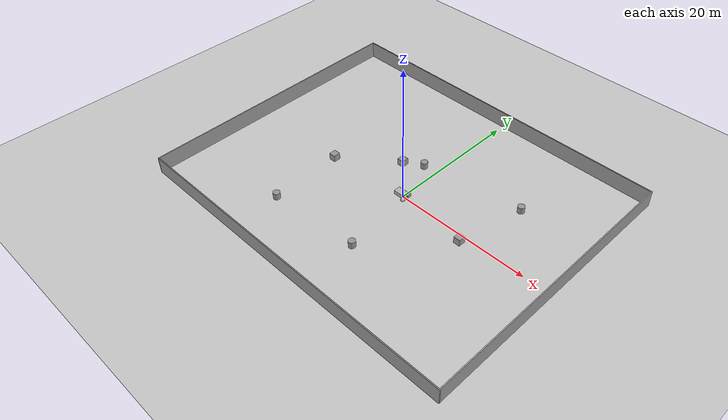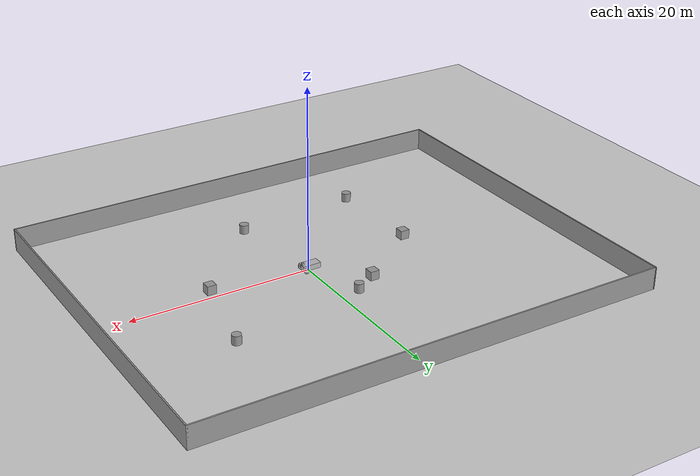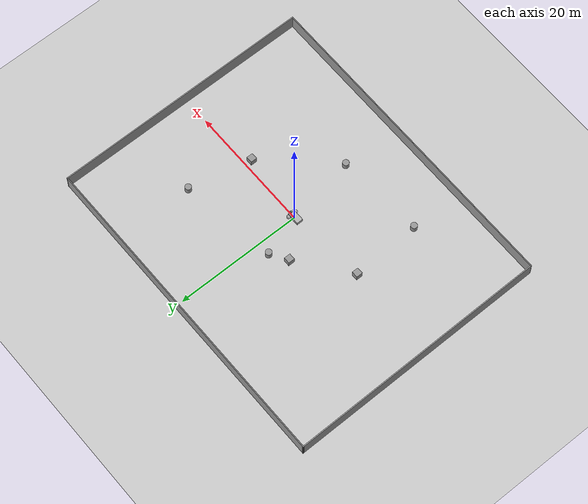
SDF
<sdf version="1.7">
 <world name="default">
  <model name="ground_plane">
   <static>1</static>
   <link name="link">
    <collision name="collision">
     <geometry><plane><normal>0 0 1</normal><size>100 100</size></plane></geometry>
     <surface>
      <contact><collide_bitmask>65535</collide_bitmask></contact>
      <friction><ode><mu>100</mu><mu2>50</mu2></ode></friction>
     </surface>
    </collision>
    <visual name="visual">
     <cast_shadows>0</cast_shadows>
     <geometry><plane><normal>0 0 1</normal><size>100 100</size></plane></geometry>
     <material>
      <script><uri>file://media/materials/scripts/gazebo.material</uri><name>Gazebo/Grey</name></script>
     </material>
    </visual>
   </link>
  </model>
  <light name="sun" type="directional">
   <pose>0 0 10 0 -0 0</pose>
   <diffuse>0.8 0.8 0.8 1</diffuse>
   <specular>0.2 0.2 0.2 1</specular>
   <attenuation>
    <range>1000</range>
    <constant>0.9</constant>
    <linear>0.01</linear>
    <quadratic>0.001</quadratic>
   </attenuation>
   <direction>-0.5 0.1 -0.9</direction>
   <spot><inner_angle>0</inner_angle><outer_angle>0</outer_angle><falloff>0</falloff></spot>
  </light>
  <model name="vehicle">
   <pose>5.4e-05 -2e-06 0.324993 1e-06 7e-06 4e-06</pose>
   <link name="chassis">
    <pose>-0.151427 -0 0.175 0 -0 0</pose>
    <inertial>
     <mass>1.14395</mass>
     <inertia>
      <ixx>0.126164</ixx>
      <ixy>0</ixy>
      <ixz>0</ixz>
      <iyy>0.416519</iyy>
      <iyz>0</iyz>
      <izz>0.481014</izz>
     </inertia>
    </inertial>
    <visual name="visual"><geometry><box><size>2.01142 1 0.568726</size></box></geometry></visual>
    <collision name="collision"><geometry><box><size>2.01142 1 0.568726</size></box></geometry></collision>
   </link>
   <link name="left_wheel">
    <pose>0.554283 0.625029 -0.025 -1.5707 0 0</pose>
    <inertial>
     <mass>2</mass>
     <inertia><ixx>0.145833</ixx><ixy>0</ixy><ixz>0</ixz><iyy>0.145833</iyy><iyz>0</iyz><izz>0.125</izz></inertia>
    </inertial>
    <visual name="visual"><geometry><sphere><radius>0.3</radius></sphere></geometry></visual>
    <collision name="collision">
     <geometry><sphere><radius>0.3</radius></sphere></geometry>
     <surface>
      <friction><ode><mu>1</mu><mu2>1</mu2><slip1>0</slip1><slip2>0</slip2></ode></friction>
      <contact>
       <ode>
        <soft_cfm>0</soft_cfm>
        <soft_erp>0.2</soft_erp>
        <kp>1e+13</kp>
        <kd>1</kd>
        <max_vel>0.01</max_vel>
        <min_depth>0.01</min_depth>
       </ode>
      </contact>
     </surface>
    </collision>
   </link>
   <link name="right_wheel">
    <pose>0.554282 -0.625029 -0.025 -1.5707 0 0</pose>
    <inertial>
     <mass>2</mass>
     <inertia><ixx>0.145833</ixx><ixy>0</ixy><ixz>0</ixz><iyy>0.145833</iyy><iyz>0</iyz><izz>0.125</izz></inertia>
    </inertial>
    <visual name="visual"><geometry><sphere><radius>0.3</radius></sphere></geometry></visual>
    <collision name="collision">
     <geometry><sphere><radius>0.3</radius></sphere></geometry>
     <surface>
      <friction><ode><mu>1</mu><mu2>1</mu2><slip1>0</slip1><slip2>0</slip2></ode></friction>
      <contact>
       <ode>
        <soft_cfm>0</soft_cfm>
        <soft_erp>0.2</soft_erp>
        <kp>1e+13</kp>
        <kd>1</kd>
        <max_vel>0.01</max_vel>
        <min_depth>0.01</min_depth>
       </ode>
      </contact>
     </surface>
    </collision>
   </link>
   <link name="caster">
    <pose>-0.957138 -0 -0.125 0 -0 0</pose>
    <inertial>
     <mass>1</mass>
     <inertia><ixx>0.1</ixx><ixy>0</ixy><ixz>0</ixz><iyy>0.1</iyy><iyz>0</iyz><izz>0.1</izz></inertia>
    </inertial>
    <visual name="visual"><geometry><sphere><radius>0.2</radius></sphere></geometry></visual>
    <collision name="collision"><geometry><sphere><radius>0.2</radius></sphere></geometry></collision>
   </link>
   <joint name="left_wheel_joint" type="revolute">
    <parent>chassis</parent>
    <child>left_wheel</child>
    <axis>
     <xyz>0 0 1</xyz>
     <limit><lower>-1.79769e+308</lower><upper>1.79769e+308</upper></limit>
     <dynamics><spring_reference>0</spring_reference><spring_stiffness>0</spring_stiffness></dynamics>
    </axis>
   </joint>
   <joint name="right_wheel_joint" type="revolute">
    <parent>chassis</parent>
    <child>right_wheel</child>
    <axis>
     <xyz>0 0 1</xyz>
     <limit><lower>-1.79769e+308</lower><upper>1.79769e+308</upper></limit>
     <dynamics><spring_reference>0</spring_reference><spring_stiffness>0</spring_stiffness></dynamics>
    </axis>
   </joint>
   <joint name="caster_wheel" type="ball"><parent>chassis</parent><child>caster</child></joint>
   <link name="camera_link">
    <pose>0.7 0 0.56 0 0 0</pose>
    <inertial>
     <mass>0.1</mass>
     <inertia>
      <ixx>0.0126164</ixx>
      <ixy>0</ixy>
      <ixz>0</ixz>
      <iyy>0.0416519</iyy>
      <iyz>0</iyz>
      <izz>0.0481014</izz>
     </inertia>
    </inertial>
    <visual name="visual">
     <geometry><box><size>0.2 0.2 0.2</size></box></geometry>
     <material><name>red</name></material>
    </visual>
    <collision name="collision"><geometry><box><size>0.2 0.2 0.2</size></box></geometry></collision>
    <sensor type="camera" name="camera1">
     <camera>
      <horizontal_fov>1.047</horizontal_fov>
      <image><width>320</width><height>240</height></image>
      <clip><near>0.1</near><far>100</far></clip>
     </camera>
     <visualize>true</visualize>
     <plugin name="camera_controller" filename="libgazebo_ros_camera.so">
      <alwaysOn>true</alwaysOn>
      <updateRate>10.0</updateRate>
      <cameraName>camera1</cameraName>
      <imageTopicName>image_raw</imageTopicName>
      <cameraInfoTopicName>camera_info</cameraInfoTopicName>
      <frameName>camera_link</frameName>
      <hackBaseline>0.07</hackBaseline>
      <distortionK1>0.0</distortionK1>
      <distortionK2>0.0</distortionK2>
      <distortionK3>0.0</distortionK3>
      <distortionT1>0.0</distortionT1>
      <distortionT2>0.0</distortionT2>
     </plugin>
    </sensor>
   </link>
   <joint name="camera_joint" type="fixed"><parent>chassis</parent><child>camera_link</child></joint>
   <link name="laser_link">
    <pose>0.9 0 0.35 0 0 0</pose>
    <inertial>
     <mass>0.1</mass>
     <inertia>
      <ixx>0.0126164</ixx>
      <ixy>0</ixy>
      <ixz>0</ixz>
      <iyy>0.0416519</iyy>
      <iyz>0</iyz>
      <izz>0.0481014</izz>
     </inertia>
    </inertial>
    <visual name="visual">
     <geometry><box><size>0.15 0.15 0.15</size></box></geometry>
     <material><name>red</name></material>
    </visual>
    <collision name="collision"><geometry><box><size>0.15 0.15 0.15</size></box></geometry></collision>
    <sensor type="gpu_ray" name="laser1">
     <visualize>true</visualize>
     <update_rate>20</update_rate>
     <ray>
      <scan>
       <horizontal>
        <samples>720</samples>
        <resolution>1</resolution>
        <min_angle>-1.0</min_angle>
        <max_angle>1.0</max_angle>
       </horizontal>
      </scan>
      <range><min>0.15</min><max>4.0</max><resolution>0.01</resolution></range>
      <noise><type>gaussian</type><mean>0.0</mean><stddev>0.01</stddev></noise>
     </ray>
     <plugin name="gazebo_ros_ray_sensor" filename="libgazebo_ros_ray_sensor.so">
      <namespace>/laser1</namespace>
      <remapping>~/out:=scan</remapping>
      <output_type>sensor_msgs/LaserScan</output_type>
     </plugin>
    </sensor>
   </link>
   <joint name="laser_joint" type="fixed"><parent>chassis</parent><child>laser_link</child></joint>
   <plugin name="diff_drive" filename="libgazebo_ros_diff_drive.so">
    <ros><namespace>/surv_bot</namespace></ros>
    <left_joint>left_wheel_joint</left_joint>
    <right_joint>right_wheel_joint</right_joint>
    <wheel_separation>1.25</wheel_separation>
    <wheel_diameter>0.6</wheel_diameter>
    <max_wheel_torque>20</max_wheel_torque>
    <max_wheel_acceleration>1.0</max_wheel_acceleration>
    <publish_odom>1</publish_odom>
    <publish_odom_tf>1</publish_odom_tf>
    <publish_wheel_tf>1</publish_wheel_tf>
    <odometry_frame>odom_demo</odometry_frame>
    <robot_base_frame>chassis</robot_base_frame>
   </plugin>
  </model>
  <gravity>0 0 -9.8</gravity>
  <magnetic_field>6e-06 2.3e-05 -4.2e-05</magnetic_field>
  <atmosphere type="adiabatic"/>
  <physics type="ode">
   <max_step_size>0.001</max_step_size>
   <real_time_factor>1</real_time_factor>
   <real_time_update_rate>1000</real_time_update_rate>
  </physics>
  <scene><ambient>0.4 0.4 0.4 1</ambient><background>0.7 0.7 0.7 1</background><shadows>1</shadows></scene>
  <spherical_coordinates>
   <surface_model>EARTH_WGS84</surface_model>
   <latitude_deg>0</latitude_deg>
   <longitude_deg>0</longitude_deg>
   <elevation>0</elevation>
   <heading_deg>0</heading_deg>
  </spherical_coordinates>
  <model name="unit_cylinder">
   <pose>-2.08793 6.40749 0.499992 -3e-06 4e-06 0</pose>
   <link name="link">
    <inertial>
     <mass>1</mass>
     <inertia><ixx>0.145833</ixx><ixy>0</ixy><ixz>0</ixz><iyy>0.145833</iyy><iyz>0</iyz><izz>0.125</izz></inertia>
    </inertial>
    <collision name="collision">
     <geometry><cylinder><radius>0.5</radius><length>1</length></cylinder></geometry>
    </collision>
    <visual name="visual">
     <geometry><cylinder><radius>0.5</radius><length>1</length></cylinder></geometry>
     <material>
      <script><name>Gazebo/Grey</name><uri>file://media/materials/scripts/gazebo.material</uri></script>
     </material>
    </visual>
   </link>
  </model>
  <model name="unit_box">
   <pose>-4.679 4.81905 0.499995 -1e-05 -0 -0</pose>
   <link name="link">
    <inertial>
     <mass>1</mass>
     <inertia>
      <ixx>0.166667</ixx>
      <ixy>0</ixy>
      <ixz>0</ixz>
      <iyy>0.166667</iyy>
      <iyz>0</iyz>
      <izz>0.166667</izz>
     </inertia>
    </inertial>
    <collision name="collision"><geometry><box><size>1 1 1</size></box></geometry></collision>
    <visual name="visual">
     <geometry><box><size>1 1 1</size></box></geometry>
     <material>
      <script><name>Gazebo/Grey</name><uri>file://media/materials/scripts/gazebo.material</uri></script>
     </material>
    </visual>
   </link>
  </model>
  <model name="arena_2">
   <pose>-1.66635 0.84104 0 0 -0 0</pose>
   <link name="Wall_19">
    <collision name="Wall_19_Collision">
     <geometry><box><size>51.75 0.15 2.5</size></box></geometry>
     <pose>0 0 1.25 0 -0 0</pose>
    </collision>
    <visual name="Wall_19_Visual">
     <pose>0 0 1.25 0 -0 0</pose>
     <geometry><box><size>51.75 0.15 2.5</size></box></geometry>
     <material>
      <script><uri>file://media/materials/scripts/gazebo.material</uri><name>Gazebo/Grey</name></script>
      <ambient>1 1 1 1</ambient>
     </material>
     <meta><layer>0</layer></meta>
    </visual>
    <pose>0.000229 20.425 0 0 -0 0</pose>
   </link>
   <link name="Wall_20">
    <collision name="Wall_20_Collision">
     <geometry><box><size>41 0.15 2.5</size></box></geometry>
     <pose>0 0 1.25 0 -0 0</pose>
    </collision>
    <visual name="Wall_20_Visual">
     <pose>0 0 1.25 0 -0 0</pose>
     <geometry><box><size>41 0.15 2.5</size></box></geometry>
     <material>
      <script><uri>file://media/materials/scripts/gazebo.material</uri><name>Gazebo/Grey</name></script>
      <ambient>1 1 1 1</ambient>
     </material>
     <meta><layer>0</layer></meta>
    </visual>
    <pose>25.8002 0 0 0 -0 -1.5708</pose>
   </link>
   <link name="Wall_21">
    <collision name="Wall_21_Collision">
     <geometry><box><size>51.5 0.15 2.5</size></box></geometry>
     <pose>0 0 1.25 0 -0 0</pose>
    </collision>
    <visual name="Wall_21_Visual">
     <pose>0 0 1.25 0 -0 0</pose>
     <geometry><box><size>51.5 0.15 2.5</size></box></geometry>
     <material>
      <script><uri>file://media/materials/scripts/gazebo.material</uri><name>Gazebo/Grey</name></script>
      <ambient>1 1 1 1</ambient>
     </material>
     <meta><layer>0</layer></meta>
    </visual>
    <pose>0.125229 -20.425 0 0 -0 3.14159</pose>
   </link>
   <link name="Wall_22">
    <collision name="Wall_22_Collision">
     <geometry><box><size>41.0008 0.15 2.5</size></box></geometry>
     <pose>0 0 1.25 0 -0 0</pose>
    </collision>
    <visual name="Wall_22_Visual">
     <pose>0 0 1.25 0 -0 0</pose>
     <geometry><box><size>41.0008 0.15 2.5</size></box></geometry>
     <material>
      <script><uri>file://media/materials/scripts/gazebo.material</uri><name>Gazebo/Grey</name></script>
      <ambient>1 1 1 1</ambient>
     </material>
     <meta><layer>0</layer></meta>
    </visual>
    <pose>-25.6748 0 0 0 -0 1.57692</pose>
   </link>
   <static>1</static>
  </model>
  <model name="unit_box_0">
   <pose>-12.3013 -1.02899 0.499995 0 1e-05 0</pose>
   <link name="link">
    <inertial>
     <mass>1</mass>
     <inertia>
      <ixx>0.166667</ixx>
      <ixy>0</ixy>
      <ixz>0</ixz>
      <iyy>0.166667</iyy>
      <iyz>0</iyz>
      <izz>0.166667</izz>
     </inertia>
    </inertial>
    <collision name="collision"><geometry><box><size>1 1 1</size></box></geometry></collision>
    <visual name="visual">
     <geometry><box><size>1 1 1</size></box></geometry>
     <material>
      <script><name>Gazebo/Grey</name><uri>file://media/materials/scripts/gazebo.material</uri></script>
     </material>
    </visual>
   </link>
  </model>
  <model name="unit_cylinder_0">
   <pose>1.70611 -10.8047 0.499993 -3e-06 -3e-06 0</pose>
   <link name="link">
    <inertial>
     <mass>1</mass>
     <inertia><ixx>0.145833</ixx><ixy>0</ixy><ixz>0</ixz><iyy>0.145833</iyy><iyz>0</iyz><izz>0.125</izz></inertia>
    </inertial>
    <collision name="collision">
     <geometry><cylinder><radius>0.5</radius><length>1</length></cylinder></geometry>
    </collision>
    <visual name="visual">
     <geometry><cylinder><radius>0.5</radius><length>1</length></cylinder></geometry>
     <material>
      <script><name>Gazebo/Grey</name><uri>file://media/materials/scripts/gazebo.material</uri></script>
     </material>
    </visual>
   </link>
  </model>
  <model name="unit_box_1">
   <pose>10.7661 -1.05275 0.499995 0 1e-05 0</pose>
   <link name="link">
    <inertial>
     <mass>1</mass>
     <inertia>
      <ixx>0.166667</ixx>
      <ixy>0</ixy>
      <ixz>0</ixz>
      <iyy>0.166667</iyy>
      <iyz>0</iyz>
      <izz>0.166667</izz>
     </inertia>
    </inertial>
    <collision name="collision"><geometry><box><size>1 1 1</size></box></geometry></collision>
    <visual name="visual">
     <geometry><box><size>1 1 1</size></box></geometry>
     <material>
      <script><name>Gazebo/Grey</name><uri>file://media/materials/scripts/gazebo.material</uri></script>
     </material>
    </visual>
   </link>
  </model>
  <model name="unit_cylinder_1">
   <pose>-11.8576 -11.7696 0.499993 -3e-06 -4e-06 -0</pose>
   <link name="link">
    <inertial>
     <mass>1</mass>
     <inertia><ixx>0.145833</ixx><ixy>0</ixy><ixz>0</ixz><iyy>0.145833</iyy><iyz>0</iyz><izz>0.125</izz></inertia>
    </inertial>
    <collision name="collision">
     <geometry><cylinder><radius>0.5</radius><length>1</length></cylinder></geometry>
    </collision>
    <visual name="visual">
     <geometry><cylinder><radius>0.5</radius><length>1</length></cylinder></geometry>
     <material>
      <script><name>Gazebo/Grey</name><uri>file://media/materials/scripts/gazebo.material</uri></script>
     </material>
    </visual>
   </link>
  </model>
  <model name="unit_cylinder_2">
   <pose>12.9196 8.7174 0.499997 3e-06 4e-06 -0</pose>
   <link name="link">
    <inertial>
     <mass>1</mass>
     <inertia><ixx>0.145833</ixx><ixy>0</ixy><ixz>0</ixz><iyy>0.145833</iyy><iyz>0</iyz><izz>0.125</izz></inertia>
    </inertial>
    <collision name="collision">
     <geometry><cylinder><radius>0.5</radius><length>1</length></cylinder></geometry>
    </collision>
    <visual name="visual">
     <geometry><cylinder><radius>0.5</radius><length>1</length></cylinder></geometry>
     <material>
      <script><name>Gazebo/Grey</name><uri>file://media/materials/scripts/gazebo.material</uri></script>
     </material>
    </visual>
   </link>
  </model>
 </world>
</sdf>
